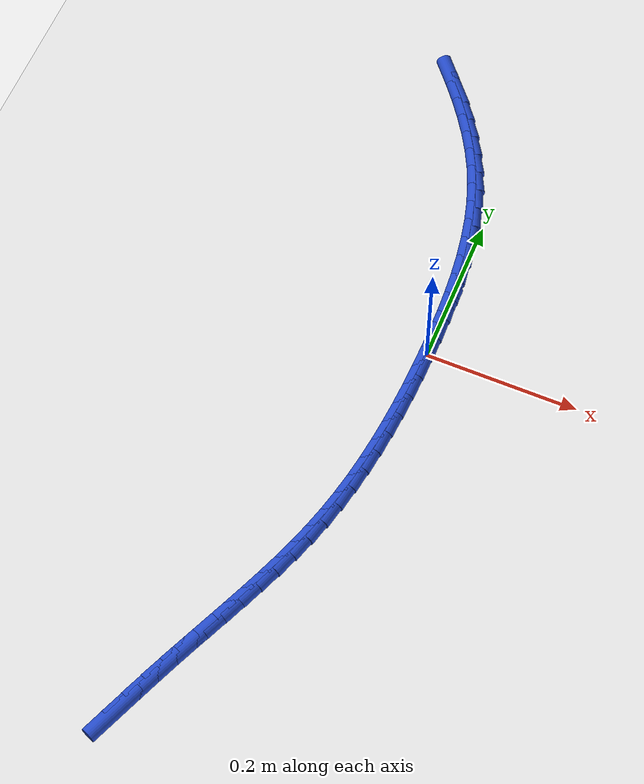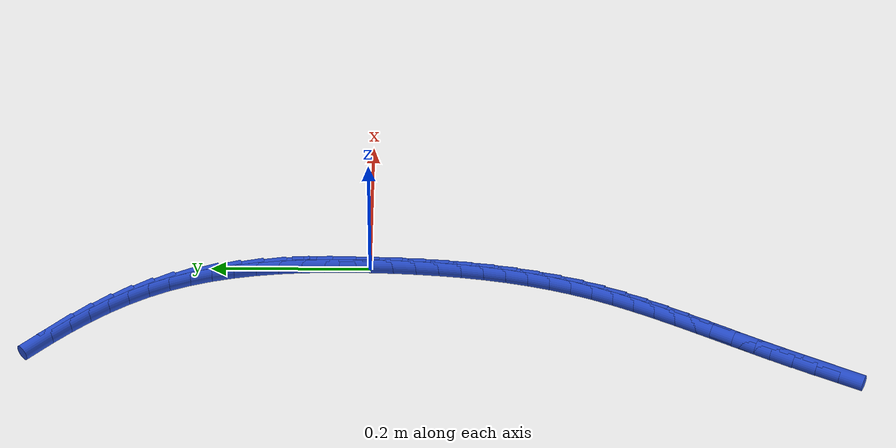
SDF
<sdf version="1.6">
 <world name="default">
  <model name="ground_plane">
   <static>1</static>
   <link name="link">
    <collision name="collision">
     <geometry><plane><normal>0 0 1</normal><size>100 100</size></plane></geometry>
     <surface><friction><ode><mu>100</mu><mu2>50</mu2></ode></friction></surface>
    </collision>
    <visual name="visual">
     <cast_shadows>0</cast_shadows>
     <geometry><plane><normal>0 0 1</normal><size>100 100</size></plane></geometry>
     <material>
      <script><uri>file://media/materials/scripts/gazebo.material</uri><name>Gazebo/WhiteGlow</name></script>
     </material>
    </visual>
   </link>
  </model>
  <model name="line">
   <link name="link_0">
    <pose>-1.3010426069826053e-18 2.7755575615628914e-17 0.01 0 1.57 1.5606672508176465</pose>
    <collision name="collision">
     <geometry><cylinder><radius>0.01</radius><length>0.08</length></cylinder></geometry>
    </collision>
    <visual name="visual">
     <material>
      <script><name>Gazebo/Blue</name><uri>file://media/materials/scripts/gazebo.material</uri></script>
     </material>
     <geometry><cylinder><radius>0.01</radius><length>0.08</length></cylinder></geometry>
    </visual>
   </link>
   <link name="link_1">
    <pose>0.00029424484520720407 0.029048531455782754 0.01 0 1.57 -1.5596097103609743</pose>
    <collision name="collision">
     <geometry><cylinder><radius>0.01</radius><length>0.08</length></cylinder></geometry>
    </collision>
    <visual name="visual">
     <material>
      <script><name>Gazebo/Blue</name><uri>file://media/materials/scripts/gazebo.material</uri></script>
     </material>
     <geometry><cylinder><radius>0.01</radius><length>0.08</length></cylinder></geometry>
    </visual>
   </link>
   <link name="link_2">
    <pose>-3.072724350105713e-05 0.058097398448196794 0.01 0 1.57 -1.5331802799537766</pose>
    <collision name="collision">
     <geometry><cylinder><radius>0.01</radius><length>0.08</length></cylinder></geometry>
    </collision>
    <visual name="visual">
     <material>
      <script><name>Gazebo/Blue</name><uri>file://media/materials/scripts/gazebo.material</uri></script>
     </material>
     <geometry><cylinder><radius>0.01</radius><length>0.08</length></cylinder></geometry>
    </visual>
   </link>
   <link name="link_3">
    <pose>-0.0011201551349901487 0.0870455229754776 0.01 0 1.57 -1.501364476305946</pose>
    <collision name="collision">
     <geometry><cylinder><radius>0.01</radius><length>0.08</length></cylinder></geometry>
    </collision>
    <visual name="visual">
     <material>
      <script><name>Gazebo/Blue</name><uri>file://media/materials/scripts/gazebo.material</uri></script>
     </material>
     <geometry><cylinder><radius>0.01</radius><length>0.08</length></cylinder></geometry>
    </visual>
   </link>
   <link name="link_4">
    <pose>-0.0031192776981254365 0.11579182703586059 0.01 0 1.57 -1.463833048337355</pose>
    <collision name="collision">
     <geometry><cylinder><radius>0.01</radius><length>0.08</length></cylinder></geometry>
    </collision>
    <visual name="visual">
     <material>
      <script><name>Gazebo/Blue</name><uri>file://media/materials/scripts/gazebo.material</uri></script>
     </material>
     <geometry><cylinder><radius>0.01</radius><length>0.08</length></cylinder></geometry>
    </visual>
   </link>
   <link name="link_5">
    <pose>-0.006173333801772286 0.1442352326275812 0.01 0 1.57 -1.4202216440338022</pose>
    <collision name="collision">
     <geometry><cylinder><radius>0.01</radius><length>0.08</length></cylinder></geometry>
    </collision>
    <visual name="visual">
     <material>
      <script><name>Gazebo/Blue</name><uri>file://media/materials/scripts/gazebo.material</uri></script>
     </material>
     <geometry><cylinder><radius>0.01</radius><length>0.08</length></cylinder></geometry>
    </visual>
   </link>
   <link name="link_6">
    <pose>-0.010427562314796067 0.1722746617488749 0.01 0 1.57 -1.3701633984199193</pose>
    <collision name="collision">
     <geometry><cylinder><radius>0.01</radius><length>0.08</length></cylinder></geometry>
    </collision>
    <visual name="visual">
     <material>
      <script><name>Gazebo/Blue</name><uri>file://media/materials/scripts/gazebo.material</uri></script>
     </material>
     <geometry><cylinder><radius>0.01</radius><length>0.08</length></cylinder></geometry>
    </visual>
   </link>
   <link name="link_7">
    <pose>-0.01602720210606214 0.1998090363979772 0.01 0 1.57 -1.313336805617156</pose>
    <collision name="collision">
     <geometry><cylinder><radius>0.01</radius><length>0.08</length></cylinder></geometry>
    </collision>
    <visual name="visual">
     <material>
      <script><name>Gazebo/Blue</name><uri>file://media/materials/scripts/gazebo.material</uri></script>
     </material>
     <geometry><cylinder><radius>0.01</radius><length>0.08</length></cylinder></geometry>
    </visual>
   </link>
   <link name="link_8">
    <pose>-0.023117492044435868 0.22673727857312329 0.01 0 1.57 -1.2495320429789014</pose>
    <collision name="collision">
     <geometry><cylinder><radius>0.01</radius><length>0.08</length></cylinder></geometry>
    </collision>
    <visual name="visual">
     <material>
      <script><name>Gazebo/Blue</name><uri>file://media/materials/scripts/gazebo.material</uri></script>
     </material>
     <geometry><cylinder><radius>0.01</radius><length>0.08</length></cylinder></geometry>
    </visual>
   </link>
   <link name="link_9">
    <pose>-0.03184367099878263 0.2529583102725489 0.01 0 1.57 -1.1796870316313597</pose>
    <collision name="collision">
     <geometry><cylinder><radius>0.01</radius><length>0.08</length></cylinder></geometry>
    </collision>
    <visual name="visual">
     <material>
      <script><name>Gazebo/Blue</name><uri>file://media/materials/scripts/gazebo.material</uri></script>
     </material>
     <geometry><cylinder><radius>0.01</radius><length>0.08</length></cylinder></geometry>
    </visual>
   </link>
   <link name="link_10">
    <pose>-0.04232801890804924 0.2783840191710974 0.01 0 1.57 -1.111845633094564</pose>
    <collision name="collision">
     <geometry><cylinder><radius>0.01</radius><length>0.08</length></cylinder></geometry>
    </collision>
    <visual name="visual">
     <material>
      <script><name>Gazebo/Blue</name><uri>file://media/materials/scripts/gazebo.material</uri></script>
     </material>
     <geometry><cylinder><radius>0.01</radius><length>0.08</length></cylinder></geometry>
    </visual>
   </link>
   <link name="link_11">
    <pose>-0.054507199077999474 0.3030311168725808 0.01 0 1.57 -1.05029309112493</pose>
    <collision name="collision">
     <geometry><cylinder><radius>0.01</radius><length>0.08</length></cylinder></geometry>
    </collision>
    <visual name="visual">
     <material>
      <script><name>Gazebo/Blue</name><uri>file://media/materials/scripts/gazebo.material</uri></script>
     </material>
     <geometry><cylinder><radius>0.01</radius><length>0.08</length></cylinder></geometry>
    </visual>
   </link>
   <link name="link_12">
    <pose>-0.06822800848616067 0.326967065505945 0.01 0 1.57 -0.9953735546984731</pose>
    <collision name="collision">
     <geometry><cylinder><radius>0.01</radius><length>0.08</length></cylinder></geometry>
    </collision>
    <visual name="visual">
     <material>
      <script><name>Gazebo/Blue</name><uri>file://media/materials/scripts/gazebo.material</uri></script>
     </material>
     <geometry><cylinder><radius>0.01</radius><length>0.08</length></cylinder></geometry>
    </visual>
   </link>
   <link name="link_13">
    <pose>-0.08333665587410875 0.3502596593966771 0.01 0 1.57 -0.9471667919775371</pose>
    <collision name="collision">
     <geometry><cylinder><radius>0.01</radius><length>0.08</length></cylinder></geometry>
    </collision>
    <visual name="visual">
     <material>
      <script><name>Gazebo/Blue</name><uri>file://media/materials/scripts/gazebo.material</uri></script>
     </material>
     <geometry><cylinder><radius>0.01</radius><length>0.08</length></cylinder></geometry>
    </visual>
   </link>
   <link name="link_14">
    <pose>-0.09967934998341976 0.37297669287026447 0.01 0 1.57 -0.9055844722390366</pose>
    <collision name="collision">
     <geometry><cylinder><radius>0.01</radius><length>0.08</length></cylinder></geometry>
    </collision>
    <visual name="visual">
     <material>
      <script><name>Gazebo/Blue</name><uri>file://media/materials/scripts/gazebo.material</uri></script>
     </material>
     <geometry><cylinder><radius>0.01</radius><length>0.08</length></cylinder></geometry>
    </visual>
   </link>
   <link name="link_15">
    <pose>-0.11710229955566973 0.3951859602521946 0.01 0 1.57 -0.8704366464081991</pose>
    <collision name="collision">
     <geometry><cylinder><radius>0.01</radius><length>0.08</length></cylinder></geometry>
    </collision>
    <visual name="visual">
     <material>
      <script><name>Gazebo/Blue</name><uri>file://media/materials/scripts/gazebo.material</uri></script>
     </material>
     <geometry><cylinder><radius>0.01</radius><length>0.08</length></cylinder></geometry>
    </visual>
   </link>
   <link name="link_219">
    <pose>-0.16390069746245733 -0.5705086149376883 0.01 0 1.57 1.1729781465775757</pose>
    <collision name="collision">
     <geometry><cylinder><radius>0.01</radius><length>0.08</length></cylinder></geometry>
    </collision>
    <visual name="visual">
     <material>
      <script><name>Gazebo/Blue</name><uri>file://media/materials/scripts/gazebo.material</uri></script>
     </material>
     <geometry><cylinder><radius>0.01</radius><length>0.08</length></cylinder></geometry>
    </visual>
   </link>
   <link name="link_220">
    <pose>-0.1521621701393037 -0.5425746222503653 0.01 0 1.57 1.1695249436853956</pose>
    <collision name="collision">
     <geometry><cylinder><radius>0.01</radius><length>0.08</length></cylinder></geometry>
    </collision>
    <visual name="visual">
     <material>
      <script><name>Gazebo/Blue</name><uri>file://media/materials/scripts/gazebo.material</uri></script>
     </material>
     <geometry><cylinder><radius>0.01</radius><length>0.08</length></cylinder></geometry>
    </visual>
   </link>
   <link name="link_221">
    <pose>-0.1404185067432971 -0.5148964083042182 0.01 0 1.57 1.1596243481179243</pose>
    <collision name="collision">
     <geometry><cylinder><radius>0.01</radius><length>0.08</length></cylinder></geometry>
    </collision>
    <visual name="visual">
     <material>
      <script><name>Gazebo/Blue</name><uri>file://media/materials/scripts/gazebo.material</uri></script>
     </material>
     <geometry><cylinder><radius>0.01</radius><length>0.08</length></cylinder></geometry>
    </visual>
   </link>
   <link name="link_222">
    <pose>-0.12854574500847676 -0.4876668825843724 0.01 0 1.57 1.148614868906196</pose>
    <collision name="collision">
     <geometry><cylinder><radius>0.01</radius><length>0.08</length></cylinder></geometry>
    </collision>
    <visual name="visual">
     <material>
      <script><name>Gazebo/Blue</name><uri>file://media/materials/scripts/gazebo.material</uri></script>
     </material>
     <geometry><cylinder><radius>0.01</radius><length>0.08</length></cylinder></geometry>
    </visual>
   </link>
   <link name="link_223">
    <pose>-0.11654097989480916 -0.4609416164060583 0.01 0 1.57 1.1429056802576698</pose>
    <collision name="collision">
     <geometry><cylinder><radius>0.01</radius><length>0.08</length></cylinder></geometry>
    </collision>
    <visual name="visual">
     <material>
      <script><name>Gazebo/Blue</name><uri>file://media/materials/scripts/gazebo.material</uri></script>
     </material>
     <geometry><cylinder><radius>0.01</radius><length>0.08</length></cylinder></geometry>
    </visual>
   </link>
   <link name="link_224">
    <pose>-0.10453732208472571 -0.43462187265511143 0.01 0 1.57 1.143073463121159</pose>
    <collision name="collision">
     <geometry><cylinder><radius>0.01</radius><length>0.08</length></cylinder></geometry>
    </collision>
    <visual name="visual">
     <material>
      <script><name>Gazebo/Blue</name><uri>file://media/materials/scripts/gazebo.material</uri></script>
     </material>
     <geometry><cylinder><radius>0.01</radius><length>0.08</length></cylinder></geometry>
    </visual>
   </link>
   <link name="link_225">
    <pose>-0.09267511258456652 -0.4086007114897227 0.01 0 1.57 1.149323267338191</pose>
    <collision name="collision">
     <geometry><cylinder><radius>0.01</radius><length>0.08</length></cylinder></geometry>
    </collision>
    <visual name="visual">
     <material>
      <script><name>Gazebo/Blue</name><uri>file://media/materials/scripts/gazebo.material</uri></script>
     </material>
     <geometry><cylinder><radius>0.01</radius><length>0.08</length></cylinder></geometry>
    </visual>
   </link>
   <link name="link_226">
    <pose>-0.08109469240067199 -0.38277119306808316 0.01 0 1.57 1.1618164530199613</pose>
    <collision name="collision">
     <geometry><cylinder><radius>0.01</radius><length>0.08</length></cylinder></geometry>
    </collision>
    <visual name="visual">
     <material>
      <script><name>Gazebo/Blue</name><uri>file://media/materials/scripts/gazebo.material</uri></script>
     </material>
     <geometry><cylinder><radius>0.01</radius><length>0.08</length></cylinder></geometry>
    </visual>
   </link>
   <link name="link_227">
    <pose>-0.06993640253938259 -0.35702637754838407 0.01 0 1.57 1.1806587230880075</pose>
    <collision name="collision">
     <geometry><cylinder><radius>0.01</radius><length>0.08</length></cylinder></geometry>
    </collision>
    <visual name="visual">
     <material>
      <script><name>Gazebo/Blue</name><uri>file://media/materials/scripts/gazebo.material</uri></script>
     </material>
     <geometry><cylinder><radius>0.01</radius><length>0.08</length></cylinder></geometry>
    </visual>
   </link>
   <link name="link_228">
    <pose>-0.05934058400703872 -0.33125932508881684 0.01 0 1.57 1.2058810477543247</pose>
    <collision name="collision">
     <geometry><cylinder><radius>0.01</radius><length>0.08</length></cylinder></geometry>
    </collision>
    <visual name="visual">
     <material>
      <script><name>Gazebo/Blue</name><uri>file://media/materials/scripts/gazebo.material</uri></script>
     </material>
     <geometry><cylinder><radius>0.01</radius><length>0.08</length></cylinder></geometry>
    </visual>
   </link>
   <link name="link_229">
    <pose>-0.04944757780998077 -0.30536309584757265 0.01 0 1.57 1.237413948558014</pose>
    <collision name="collision">
     <geometry><cylinder><radius>0.01</radius><length>0.08</length></cylinder></geometry>
    </collision>
    <visual name="visual">
     <material>
      <script><name>Gazebo/Blue</name><uri>file://media/materials/scripts/gazebo.material</uri></script>
     </material>
     <geometry><cylinder><radius>0.01</radius><length>0.08</length></cylinder></geometry>
    </visual>
   </link>
   <link name="link_230">
    <pose>-0.04039772495454899 -0.2792307499828422 0.01 0 1.57 1.2750402408283126</pose>
    <collision name="collision">
     <geometry><cylinder><radius>0.01</radius><length>0.08</length></cylinder></geometry>
    </collision>
    <visual name="visual">
     <material>
      <script><name>Gazebo/Blue</name><uri>file://media/materials/scripts/gazebo.material</uri></script>
     </material>
     <geometry><cylinder><radius>0.01</radius><length>0.08</length></cylinder></geometry>
    </visual>
   </link>
   <link name="link_231">
    <pose>-0.032330958651768826 -0.2527556271390198 0.01 0 1.57 1.3158442868333085</pose>
    <collision name="collision">
     <geometry><cylinder><radius>0.01</radius><length>0.08</length></cylinder></geometry>
    </collision>
    <visual name="visual">
     <material>
      <script><name>Gazebo/Blue</name><uri>file://media/materials/scripts/gazebo.material</uri></script>
     </material>
     <geometry><cylinder><radius>0.01</radius><length>0.08</length></cylinder></geometry>
    </visual>
   </link>
   <link name="link_232">
    <pose>-0.02532491216722678 -0.22587376479066634 0.01 0 1.57 1.3543086351691715</pose>
    <collision name="collision">
     <geometry><cylinder><radius>0.01</radius><length>0.08</length></cylinder></geometry>
    </collision>
    <visual name="visual">
     <material>
      <script><name>Gazebo/Blue</name><uri>file://media/materials/scripts/gazebo.material</uri></script>
     </material>
     <geometry><cylinder><radius>0.01</radius><length>0.08</length></cylinder></geometry>
    </visual>
   </link>
   <link name="link_233">
    <pose>-0.019328539801354683 -0.19860939170307054 0.01 0 1.57 1.3897741635970047</pose>
    <collision name="collision">
     <geometry><cylinder><radius>0.01</radius><length>0.08</length></cylinder></geometry>
    </collision>
    <visual name="visual">
     <material>
      <script><name>Gazebo/Blue</name><uri>file://media/materials/scripts/gazebo.material</uri></script>
     </material>
     <geometry><cylinder><radius>0.01</radius><length>0.08</length></cylinder></geometry>
    </visual>
   </link>
   <link name="link_234">
    <pose>-0.014274879547450044 -0.17099764502633813 0.01 0 1.57 1.4222807072961283</pose>
    <collision name="collision">
     <geometry><cylinder><radius>0.01</radius><length>0.08</length></cylinder></geometry>
    </collision>
    <visual name="visual">
     <material>
      <script><name>Gazebo/Blue</name><uri>file://media/materials/scripts/gazebo.material</uri></script>
     </material>
     <geometry><cylinder><radius>0.01</radius><length>0.08</length></cylinder></geometry>
    </visual>
   </link>
   <link name="link_235">
    <pose>-0.010096969398810383 -0.14307366191057483 0.01 0 1.57 1.4518920516868332</pose>
    <collision name="collision">
     <geometry><cylinder><radius>0.01</radius><length>0.08</length></cylinder></geometry>
    </collision>
    <visual name="visual">
     <material>
      <script><name>Gazebo/Blue</name><uri>file://media/materials/scripts/gazebo.material</uri></script>
     </material>
     <geometry><cylinder><radius>0.01</radius><length>0.08</length></cylinder></geometry>
    </visual>
   </link>
   <link name="link_236">
    <pose>-0.006727847348733225 -0.11487257950588667 0.01 0 1.57 1.4786872809954918</pose>
    <collision name="collision">
     <geometry><cylinder><radius>0.01</radius><length>0.08</length></cylinder></geometry>
    </collision>
    <visual name="visual">
     <material>
      <script><name>Gazebo/Blue</name><uri>file://media/materials/scripts/gazebo.material</uri></script>
     </material>
     <geometry><cylinder><radius>0.01</radius><length>0.08</length></cylinder></geometry>
    </visual>
   </link>
   <link name="link_237">
    <pose>-0.004100551390516089 -0.08642953496237933 0.01 0 1.57 1.502753510709671</pose>
    <collision name="collision">
     <geometry><cylinder><radius>0.01</radius><length>0.08</length></cylinder></geometry>
    </collision>
    <visual name="visual">
     <material>
      <script><name>Gazebo/Blue</name><uri>file://media/materials/scripts/gazebo.material</uri></script>
     </material>
     <geometry><cylinder><radius>0.01</radius><length>0.08</length></cylinder></geometry>
    </visual>
   </link>
   <link name="link_238">
    <pose>-0.00214811951745645 -0.057779665430157875 0.01 0 1.57 1.524179979493715</pose>
    <collision name="collision">
     <geometry><cylinder><radius>0.01</radius><length>0.08</length></cylinder></geometry>
    </collision>
    <visual name="visual">
     <material>
      <script><name>Gazebo/Blue</name><uri>file://media/materials/scripts/gazebo.material</uri></script>
     </material>
     <geometry><cylinder><radius>0.01</radius><length>0.08</length></cylinder></geometry>
    </visual>
   </link>
   <link name="link_239">
    <pose>-0.0008035897228519315 -0.028958108059329683 0.01 0 1.57 1.5430533698351077</pose>
    <collision name="collision">
     <geometry><cylinder><radius>0.01</radius><length>0.08</length></cylinder></geometry>
    </collision>
    <visual name="visual">
     <material>
      <script><name>Gazebo/Blue</name><uri>file://media/materials/scripts/gazebo.material</uri></script>
     </material>
     <geometry><cylinder><radius>0.01</radius><length>0.08</length></cylinder></geometry>
    </visual>
   </link>
   <link name="link_240">
    <pose>1.0625181290357943e-17 2.0816681711721685e-16 0.01 0 1.57 1.5594541743668706</pose>
    <collision name="collision">
     <geometry><cylinder><radius>0.01</radius><length>0.08</length></cylinder></geometry>
    </collision>
    <visual name="visual">
     <material>
      <script><name>Gazebo/Blue</name><uri>file://media/materials/scripts/gazebo.material</uri></script>
     </material>
     <geometry><cylinder><radius>0.01</radius><length>0.08</length></cylinder></geometry>
    </visual>
   </link>
   <link name="link_241">
    <pose>0.00032961165780185427 0.029059521597725957 0.01 0 1.57 -1.5681387440445924</pose>
    <collision name="collision">
     <geometry><cylinder><radius>0.01</radius><length>0.08</length></cylinder></geometry>
    </collision>
    <visual name="visual">
     <material>
      <script><name>Gazebo/Blue</name><uri>file://media/materials/scripts/gazebo.material</uri></script>
     </material>
     <geometry><cylinder><radius>0.01</radius><length>0.08</length></cylinder></geometry>
    </visual>
   </link>
   <link name="link_242">
    <pose>0.000252207257256081 0.05818531958374178 0.01 0 1.57 1.566461802561637</pose>
    <collision name="collision">
     <geometry><cylinder><radius>0.01</radius><length>0.08</length></cylinder></geometry>
    </collision>
    <visual name="visual">
     <material>
      <script><name>Gazebo/Blue</name><uri>file://media/materials/scripts/gazebo.material</uri></script>
     </material>
     <geometry><cylinder><radius>0.01</radius><length>0.08</length></cylinder></geometry>
    </visual>
   </link>
  </model>
 </world>
</sdf>
